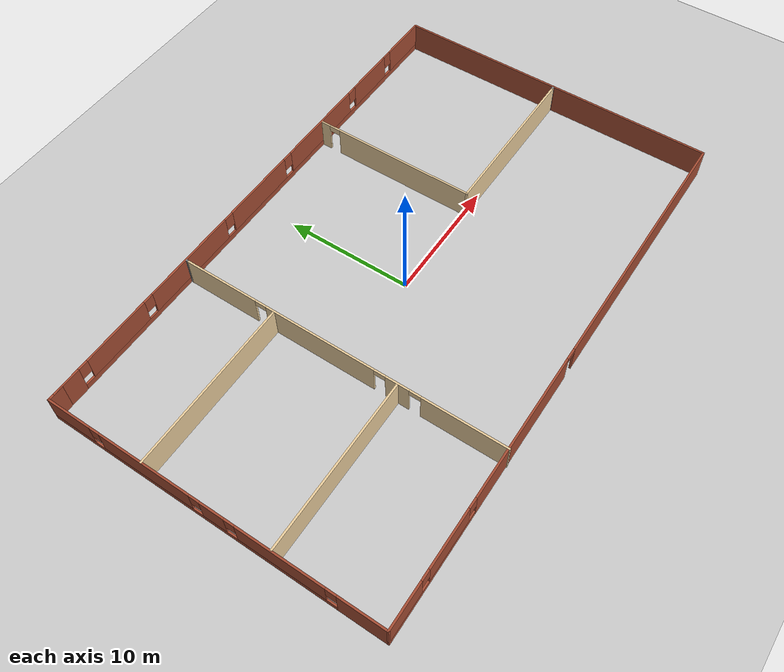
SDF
<sdf version="1.6">
 <world name="default">
  <model name="ground_plane">
   <static>1</static>
   <link name="link">
    <collision name="collision">
     <geometry><plane><normal>0 0 1</normal><size>100 100</size></plane></geometry>
     <surface><friction><ode><mu>100</mu><mu2>50</mu2></ode></friction></surface>
    </collision>
    <visual name="visual">
     <cast_shadows>0</cast_shadows>
     <geometry><plane><normal>0 0 1</normal><size>100 100</size></plane></geometry>
     <material>
      <script><uri>file://media/materials/scripts/gazebo.material</uri><name>Gazebo/Grey</name></script>
     </material>
    </visual>
   </link>
  </model>
  <model name="house">
   <pose>-0.058485 -0.008057 0 0 -0 0</pose>
   <link name="Wall_20">
    <pose>0.25 13.0749 0 0 -0 0</pose>
    <visual name="Wall_20_Visual_0">
     <pose>-20.0162 0 1.25 0 -0 0</pose>
     <geometry><box><size>2.21756 0.15 2.5</size></box></geometry>
     <material>
      <script><uri>file://media/materials/scripts/gazebo.material</uri><name>Gazebo/Bricks</name></script>
      <ambient>0.921569 0.807843 0.615686 1</ambient>
     </material>
     <meta><layer>0</layer></meta>
    </visual>
    <collision name="Wall_20_Collision_0">
     <geometry><box><size>2.21756 0.15 2.5</size></box></geometry>
     <pose>-20.0162 0 1.25 0 -0 0</pose>
    </collision>
    <visual name="Wall_20_Visual_1">
     <pose>1.10878 0 0.25 0 -0 0</pose>
     <geometry><box><size>40.0324 0.15 0.5</size></box></geometry>
     <material>
      <script><uri>file://media/materials/scripts/gazebo.material</uri><name>Gazebo/Bricks</name></script>
      <ambient>0.921569 0.807843 0.615686 1</ambient>
     </material>
     <meta><layer>0</layer></meta>
    </visual>
    <collision name="Wall_20_Collision_1">
     <geometry><box><size>40.0324 0.15 0.5</size></box></geometry>
     <pose>1.10878 0 0.25 0 -0 0</pose>
    </collision>
    <visual name="Wall_20_Visual_2">
     <pose>-15.3649 0 1.5 0 -0 0</pose>
     <geometry><box><size>5.48509 0.15 2</size></box></geometry>
     <material>
      <script><uri>file://media/materials/scripts/gazebo.material</uri><name>Gazebo/Bricks</name></script>
      <ambient>0.921569 0.807843 0.615686 1</ambient>
     </material>
     <meta><layer>0</layer></meta>
    </visual>
    <collision name="Wall_20_Collision_2">
     <geometry><box><size>5.48509 0.15 2</size></box></geometry>
     <pose>-15.3649 0 1.5 0 -0 0</pose>
    </collision>
    <visual name="Wall_20_Visual_3">
     <pose>-7.92857 0 1.5 0 -0 0</pose>
     <geometry><box><size>7.78755 0.15 2</size></box></geometry>
     <material>
      <script><uri>file://media/materials/scripts/gazebo.material</uri><name>Gazebo/Bricks</name></script>
      <ambient>0.921569 0.807843 0.615686 1</ambient>
     </material>
     <meta><layer>0</layer></meta>
    </visual>
    <collision name="Wall_20_Collision_3">
     <geometry><box><size>7.78755 0.15 2</size></box></geometry>
     <pose>-7.92857 0 1.5 0 -0 0</pose>
    </collision>
    <visual name="Wall_20_Visual_4">
     <pose>-0.149988 0 1.5 0 -0 0</pose>
     <geometry><box><size>6.16961 0.15 2</size></box></geometry>
     <material>
      <script><uri>file://media/materials/scripts/gazebo.material</uri><name>Gazebo/Bricks</name></script>
      <ambient>0.921569 0.807843 0.615686 1</ambient>
     </material>
     <meta><layer>0</layer></meta>
    </visual>
    <collision name="Wall_20_Collision_4">
     <geometry><box><size>6.16961 0.15 2</size></box></geometry>
     <pose>-0.149988 0 1.5 0 -0 0</pose>
    </collision>
    <visual name="Wall_20_Visual_5">
     <pose>7.53525 0 1.5 0 -0 0</pose>
     <geometry><box><size>7.60087 0.15 2</size></box></geometry>
     <material>
      <script><uri>file://media/materials/scripts/gazebo.material</uri><name>Gazebo/Bricks</name></script>
      <ambient>0.921569 0.807843 0.615686 1</ambient>
     </material>
     <meta><layer>0</layer></meta>
    </visual>
    <collision name="Wall_20_Collision_5">
     <geometry><box><size>7.60087 0.15 2</size></box></geometry>
     <pose>7.53525 0 1.5 0 -0 0</pose>
    </collision>
    <visual name="Wall_20_Visual_6">
     <pose>14.2248 0 1.5 0 -0 0</pose>
     <geometry><box><size>4.17829 0.15 2</size></box></geometry>
     <material>
      <script><uri>file://media/materials/scripts/gazebo.material</uri><name>Gazebo/Bricks</name></script>
      <ambient>0.921569 0.807843 0.615686 1</ambient>
     </material>
     <meta><layer>0</layer></meta>
    </visual>
    <collision name="Wall_20_Collision_6">
     <geometry><box><size>4.17829 0.15 2</size></box></geometry>
     <pose>14.2248 0 1.5 0 -0 0</pose>
    </collision>
    <visual name="Wall_20_Visual_7">
     <pose>19.1195 0 1.5 0 -0 0</pose>
     <geometry><box><size>4.01103 0.15 2</size></box></geometry>
     <material>
      <script><uri>file://media/materials/scripts/gazebo.material</uri><name>Gazebo/Bricks</name></script>
      <ambient>0.921569 0.807843 0.615686 1</ambient>
     </material>
     <meta><layer>0</layer></meta>
    </visual>
    <collision name="Wall_20_Collision_7">
     <geometry><box><size>4.01103 0.15 2</size></box></geometry>
     <pose>19.1195 0 1.5 0 -0 0</pose>
    </collision>
    <visual name="Wall_20_Visual_8">
     <pose>-18.5074 0 1.9 0 -0 0</pose>
     <geometry><box><size>0.8 0.15 1.2</size></box></geometry>
     <material>
      <script><uri>file://media/materials/scripts/gazebo.material</uri><name>Gazebo/Bricks</name></script>
      <ambient>0.921569 0.807843 0.615686 1</ambient>
     </material>
     <meta><layer>0</layer></meta>
    </visual>
    <collision name="Wall_20_Collision_8">
     <geometry><box><size>0.8 0.15 1.2</size></box></geometry>
     <pose>-18.5074 0 1.9 0 -0 0</pose>
    </collision>
    <visual name="Wall_20_Visual_9">
     <pose>-12.2223 0 1.9 0 -0 0</pose>
     <geometry><box><size>0.8 0.15 1.2</size></box></geometry>
     <material>
      <script><uri>file://media/materials/scripts/gazebo.material</uri><name>Gazebo/Bricks</name></script>
      <ambient>0.921569 0.807843 0.615686 1</ambient>
     </material>
     <meta><layer>0</layer></meta>
    </visual>
    <collision name="Wall_20_Collision_9">
     <geometry><box><size>0.8 0.15 1.2</size></box></geometry>
     <pose>-12.2223 0 1.9 0 -0 0</pose>
    </collision>
    <visual name="Wall_20_Visual_10">
     <pose>-3.63479 0 1.9 0 -0 0</pose>
     <geometry><box><size>0.8 0.15 1.2</size></box></geometry>
     <material>
      <script><uri>file://media/materials/scripts/gazebo.material</uri><name>Gazebo/Bricks</name></script>
      <ambient>0.921569 0.807843 0.615686 1</ambient>
     </material>
     <meta><layer>0</layer></meta>
    </visual>
    <collision name="Wall_20_Collision_10">
     <geometry><box><size>0.8 0.15 1.2</size></box></geometry>
     <pose>-3.63479 0 1.9 0 -0 0</pose>
    </collision>
    <visual name="Wall_20_Visual_11">
     <pose>3.33482 0 1.9 0 -0 0</pose>
     <geometry><box><size>0.8 0.15 1.2</size></box></geometry>
     <material>
      <script><uri>file://media/materials/scripts/gazebo.material</uri><name>Gazebo/Bricks</name></script>
      <ambient>0.921569 0.807843 0.615686 1</ambient>
     </material>
     <meta><layer>0</layer></meta>
    </visual>
    <collision name="Wall_20_Collision_11">
     <geometry><box><size>0.8 0.15 1.2</size></box></geometry>
     <pose>3.33482 0 1.9 0 -0 0</pose>
    </collision>
    <visual name="Wall_20_Visual_12">
     <pose>11.7357 0 1.9 0 -0 0</pose>
     <geometry><box><size>0.8 0.15 1.2</size></box></geometry>
     <material>
      <script><uri>file://media/materials/scripts/gazebo.material</uri><name>Gazebo/Bricks</name></script>
      <ambient>0.921569 0.807843 0.615686 1</ambient>
     </material>
     <meta><layer>0</layer></meta>
    </visual>
    <collision name="Wall_20_Collision_12">
     <geometry><box><size>0.8 0.15 1.2</size></box></geometry>
     <pose>11.7357 0 1.9 0 -0 0</pose>
    </collision>
    <visual name="Wall_20_Visual_13">
     <pose>16.714 0 1.9 0 -0 0</pose>
     <geometry><box><size>0.8 0.15 1.2</size></box></geometry>
     <material>
      <script><uri>file://media/materials/scripts/gazebo.material</uri><name>Gazebo/Bricks</name></script>
      <ambient>0.921569 0.807843 0.615686 1</ambient>
     </material>
     <meta><layer>0</layer></meta>
    </visual>
    <collision name="Wall_20_Collision_13">
     <geometry><box><size>0.8 0.15 1.2</size></box></geometry>
     <pose>16.714 0 1.9 0 -0 0</pose>
    </collision>
   </link>
   <link name="Wall_21">
    <collision name="Wall_21_Collision">
     <geometry><box><size>26.25 0.15 2.5</size></box></geometry>
     <pose>0 0 1.25 0 -0 0</pose>
    </collision>
    <visual name="Wall_21_Visual">
     <pose>0 0 1.25 0 -0 0</pose>
     <geometry><box><size>26.25 0.15 2.5</size></box></geometry>
     <material>
      <script><uri>file://media/materials/scripts/gazebo.material</uri><name>Gazebo/Bricks</name></script>
      <ambient>0.921569 0.807843 0.615686 1</ambient>
     </material>
     <meta><layer>0</layer></meta>
    </visual>
    <pose>21.3 0.024935 0 0 0 -1.5708</pose>
   </link>
   <link name="Wall_22">
    <pose>0 -13.0251 0 0 -0 3.14159</pose>
    <visual name="Wall_22_Visual_0">
     <pose>-10.9509 0 1.25 0 -0 0</pose>
     <geometry><box><size>20.8481 0.15 2.5</size></box></geometry>
     <material>
      <script><uri>file://media/materials/scripts/gazebo.material</uri><name>Gazebo/Bricks</name></script>
      <ambient>0.921569 0.807843 0.615686 1</ambient>
     </material>
     <meta><layer>0</layer></meta>
    </visual>
    <collision name="Wall_22_Collision_0">
     <geometry><box><size>20.8481 0.15 2.5</size></box></geometry>
     <pose>-10.9509 0 1.25 0 -0 0</pose>
    </collision>
    <visual name="Wall_22_Visual_1">
     <pose>6.13969 0 1.25 0 -0 0</pose>
     <geometry><box><size>11.5331 0.15 2.5</size></box></geometry>
     <material>
      <script><uri>file://media/materials/scripts/gazebo.material</uri><name>Gazebo/Bricks</name></script>
      <ambient>0.921569 0.807843 0.615686 1</ambient>
     </material>
     <meta><layer>0</layer></meta>
    </visual>
    <collision name="Wall_22_Collision_1">
     <geometry><box><size>11.5331 0.15 2.5</size></box></geometry>
     <pose>6.13969 0 1.25 0 -0 0</pose>
    </collision>
    <visual name="Wall_22_Visual_2">
     <pose>16.6406 0 0.25 0 -0 0</pose>
     <geometry><box><size>9.46877 0.15 0.5</size></box></geometry>
     <material>
      <script><uri>file://media/materials/scripts/gazebo.material</uri><name>Gazebo/Bricks</name></script>
      <ambient>0.921569 0.807843 0.615686 1</ambient>
     </material>
     <meta><layer>0</layer></meta>
    </visual>
    <collision name="Wall_22_Collision_2">
     <geometry><box><size>9.46877 0.15 0.5</size></box></geometry>
     <pose>16.6406 0 0.25 0 -0 0</pose>
    </collision>
    <visual name="Wall_22_Visual_3">
     <pose>14.9158 0 1.5 0 -0 0</pose>
     <geometry><box><size>4.41921 0.15 2</size></box></geometry>
     <material>
      <script><uri>file://media/materials/scripts/gazebo.material</uri><name>Gazebo/Bricks</name></script>
      <ambient>0.921569 0.807843 0.615686 1</ambient>
     </material>
     <meta><layer>0</layer></meta>
    </visual>
    <collision name="Wall_22_Collision_3">
     <geometry><box><size>4.41921 0.15 2</size></box></geometry>
     <pose>14.9158 0 1.5 0 -0 0</pose>
    </collision>
    <visual name="Wall_22_Visual_4">
     <pose>19.6502 0 1.5 0 -0 0</pose>
     <geometry><box><size>3.44955 0.15 2</size></box></geometry>
     <material>
      <script><uri>file://media/materials/scripts/gazebo.material</uri><name>Gazebo/Bricks</name></script>
      <ambient>0.921569 0.807843 0.615686 1</ambient>
     </material>
     <meta><layer>0</layer></meta>
    </visual>
    <collision name="Wall_22_Collision_4">
     <geometry><box><size>3.44955 0.15 2</size></box></geometry>
     <pose>19.6502 0 1.5 0 -0 0</pose>
    </collision>
    <visual name="Wall_22_Visual_5">
     <pose>12.3062 0 1.9 0 -0 0</pose>
     <geometry><box><size>0.8 0.15 1.2</size></box></geometry>
     <material>
      <script><uri>file://media/materials/scripts/gazebo.material</uri><name>Gazebo/Bricks</name></script>
      <ambient>0.921569 0.807843 0.615686 1</ambient>
     </material>
     <meta><layer>0</layer></meta>
    </visual>
    <collision name="Wall_22_Collision_5">
     <geometry><box><size>0.8 0.15 1.2</size></box></geometry>
     <pose>12.3062 0 1.9 0 -0 0</pose>
    </collision>
    <visual name="Wall_22_Visual_6">
     <pose>17.5254 0 1.9 0 -0 0</pose>
     <geometry><box><size>0.8 0.15 1.2</size></box></geometry>
     <material>
      <script><uri>file://media/materials/scripts/gazebo.material</uri><name>Gazebo/Bricks</name></script>
      <ambient>0.921569 0.807843 0.615686 1</ambient>
     </material>
     <meta><layer>0</layer></meta>
    </visual>
    <collision name="Wall_22_Collision_6">
     <geometry><box><size>0.8 0.15 1.2</size></box></geometry>
     <pose>17.5254 0 1.9 0 -0 0</pose>
    </collision>
    <visual name="Wall_22_Visual_7">
     <pose>-0.076852 0 2.25 0 -0 0</pose>
     <geometry><box><size>0.9 0.15 0.5</size></box></geometry>
     <material>
      <script><uri>file://media/materials/scripts/gazebo.material</uri><name>Gazebo/Bricks</name></script>
      <ambient>0.921569 0.807843 0.615686 1</ambient>
     </material>
     <meta><layer>0</layer></meta>
    </visual>
    <collision name="Wall_22_Collision_7">
     <geometry><box><size>0.9 0.15 0.5</size></box></geometry>
     <pose>-0.076852 0 2.25 0 -0 0</pose>
    </collision>
   </link>
   <link name="Wall_23">
    <pose>-21.3 0.024935 0 0 -0 1.5708</pose>
    <visual name="Wall_23_Visual_0">
     <pose>-11.3167 0 1.25 0 -0 0</pose>
     <geometry><box><size>3.61664 0.15 2.5</size></box></geometry>
     <material>
      <script><uri>file://media/materials/scripts/gazebo.material</uri><name>Gazebo/Bricks</name></script>
      <ambient>0.921569 0.807843 0.615686 1</ambient>
     </material>
     <meta><layer>0</layer></meta>
    </visual>
    <collision name="Wall_23_Collision_0">
     <geometry><box><size>3.61664 0.15 2.5</size></box></geometry>
     <pose>-11.3167 0 1.25 0 -0 0</pose>
    </collision>
    <visual name="Wall_23_Visual_1">
     <pose>1.80832 0 0.25 0 -0 0</pose>
     <geometry><box><size>22.6334 0.15 0.5</size></box></geometry>
     <material>
      <script><uri>file://media/materials/scripts/gazebo.material</uri><name>Gazebo/Bricks</name></script>
      <ambient>0.921569 0.807843 0.615686 1</ambient>
     </material>
     <meta><layer>0</layer></meta>
    </visual>
    <collision name="Wall_23_Collision_1">
     <geometry><box><size>22.6334 0.15 0.5</size></box></geometry>
     <pose>1.80832 0 0.25 0 -0 0</pose>
    </collision>
    <visual name="Wall_23_Visual_2">
     <pose>-5.39573 0 1.5 0 -0 0</pose>
     <geometry><box><size>6.62527 0.15 2</size></box></geometry>
     <material>
      <script><uri>file://media/materials/scripts/gazebo.material</uri><name>Gazebo/Bricks</name></script>
      <ambient>0.921569 0.807843 0.615686 1</ambient>
     </material>
     <meta><layer>0</layer></meta>
    </visual>
    <collision name="Wall_23_Collision_2">
     <geometry><box><size>6.62527 0.15 2</size></box></geometry>
     <pose>-5.39573 0 1.5 0 -0 0</pose>
    </collision>
    <visual name="Wall_23_Visual_3">
     <pose>-0.337935 0 1.5 0 -0 0</pose>
     <geometry><box><size>1.89032 0.15 2</size></box></geometry>
     <material>
      <script><uri>file://media/materials/scripts/gazebo.material</uri><name>Gazebo/Bricks</name></script>
      <ambient>0.921569 0.807843 0.615686 1</ambient>
     </material>
     <meta><layer>0</layer></meta>
    </visual>
    <collision name="Wall_23_Collision_3">
     <geometry><box><size>1.89032 0.15 2</size></box></geometry>
     <pose>-0.337935 0 1.5 0 -0 0</pose>
    </collision>
    <visual name="Wall_23_Visual_4">
     <pose>5.0696 0 1.5 0 -0 0</pose>
     <geometry><box><size>7.32475 0.15 2</size></box></geometry>
     <material>
      <script><uri>file://media/materials/scripts/gazebo.material</uri><name>Gazebo/Bricks</name></script>
      <ambient>0.921569 0.807843 0.615686 1</ambient>
     </material>
     <meta><layer>0</layer></meta>
    </visual>
    <collision name="Wall_23_Collision_4">
     <geometry><box><size>7.32475 0.15 2</size></box></geometry>
     <pose>5.0696 0 1.5 0 -0 0</pose>
    </collision>
    <visual name="Wall_23_Visual_5">
     <pose>11.3285 0 1.5 0 -0 0</pose>
     <geometry><box><size>3.59302 0.15 2</size></box></geometry>
     <material>
      <script><uri>file://media/materials/scripts/gazebo.material</uri><name>Gazebo/Bricks</name></script>
      <ambient>0.921569 0.807843 0.615686 1</ambient>
     </material>
     <meta><layer>0</layer></meta>
    </visual>
    <collision name="Wall_23_Collision_5">
     <geometry><box><size>3.59302 0.15 2</size></box></geometry>
     <pose>11.3285 0 1.5 0 -0 0</pose>
    </collision>
    <visual name="Wall_23_Visual_6">
     <pose>-9.10836 0 1.9 0 -0 0</pose>
     <geometry><box><size>0.8 0.15 1.2</size></box></geometry>
     <material>
      <script><uri>file://media/materials/scripts/gazebo.material</uri><name>Gazebo/Bricks</name></script>
      <ambient>0.921569 0.807843 0.615686 1</ambient>
     </material>
     <meta><layer>0</layer></meta>
    </visual>
    <collision name="Wall_23_Collision_6">
     <geometry><box><size>0.8 0.15 1.2</size></box></geometry>
     <pose>-9.10836 0 1.9 0 -0 0</pose>
    </collision>
    <visual name="Wall_23_Visual_7">
     <pose>-1.68309 0 1.9 0 -0 0</pose>
     <geometry><box><size>0.8 0.15 1.2</size></box></geometry>
     <material>
      <script><uri>file://media/materials/scripts/gazebo.material</uri><name>Gazebo/Bricks</name></script>
      <ambient>0.921569 0.807843 0.615686 1</ambient>
     </material>
     <meta><layer>0</layer></meta>
    </visual>
    <collision name="Wall_23_Collision_7">
     <geometry><box><size>0.8 0.15 1.2</size></box></geometry>
     <pose>-1.68309 0 1.9 0 -0 0</pose>
    </collision>
    <visual name="Wall_23_Visual_8">
     <pose>1.00722 0 1.9 0 -0 0</pose>
     <geometry><box><size>0.8 0.15 1.2</size></box></geometry>
     <material>
      <script><uri>file://media/materials/scripts/gazebo.material</uri><name>Gazebo/Bricks</name></script>
      <ambient>0.921569 0.807843 0.615686 1</ambient>
     </material>
     <meta><layer>0</layer></meta>
    </visual>
    <collision name="Wall_23_Collision_8">
     <geometry><box><size>0.8 0.15 1.2</size></box></geometry>
     <pose>1.00722 0 1.9 0 -0 0</pose>
    </collision>
    <visual name="Wall_23_Visual_9">
     <pose>9.13198 0 1.9 0 -0 0</pose>
     <geometry><box><size>0.8 0.15 1.2</size></box></geometry>
     <material>
      <script><uri>file://media/materials/scripts/gazebo.material</uri><name>Gazebo/Bricks</name></script>
      <ambient>0.921569 0.807843 0.615686 1</ambient>
     </material>
     <meta><layer>0</layer></meta>
    </visual>
    <collision name="Wall_23_Collision_9">
     <geometry><box><size>0.8 0.15 1.2</size></box></geometry>
     <pose>9.13198 0 1.9 0 -0 0</pose>
    </collision>
   </link>
   <link name="Wall_24">
    <collision name="Wall_24_Collision">
     <geometry><box><size>1.25 0.15 2.5</size></box></geometry>
     <pose>0 0 1.25 0 -0 0</pose>
    </collision>
    <visual name="Wall_24_Visual">
     <pose>0 0 1.25 0 -0 0</pose>
     <geometry><box><size>1.25 0.15 2.5</size></box></geometry>
     <material>
      <script><uri>file://media/materials/scripts/gazebo.material</uri><name>Gazebo/Bricks</name></script>
      <ambient>1 1 1 1</ambient>
     </material>
     <meta><layer>0</layer></meta>
    </visual>
    <pose>-20.75 13.0749 0 0 -0 0</pose>
   </link>
   <link name="Wall_26">
    <pose>-8.0479 -0.149936 0 0 -0 1.5708</pose>
    <visual name="Wall_26_Visual_0">
     <pose>-9.71207 0 1.25 0 -0 0</pose>
     <geometry><box><size>6.57585 0.15 2.5</size></box></geometry>
     <material>
      <script><uri>file://media/materials/scripts/gazebo.material</uri><name>Gazebo/Grey</name></script>
      <ambient>0.921569 0.807843 0.615686 1</ambient>
     </material>
     <meta><layer>0</layer></meta>
    </visual>
    <collision name="Wall_26_Collision_0">
     <geometry><box><size>6.57585 0.15 2.5</size></box></geometry>
     <pose>-9.71207 0 1.25 0 -0 0</pose>
    </collision>
    <visual name="Wall_26_Visual_1">
     <pose>-4.60208 0 1.25 0 -0 0</pose>
     <geometry><box><size>1.84412 0.15 2.5</size></box></geometry>
     <material>
      <script><uri>file://media/materials/scripts/gazebo.material</uri><name>Gazebo/Grey</name></script>
      <ambient>0.921569 0.807843 0.615686 1</ambient>
     </material>
     <meta><layer>0</layer></meta>
    </visual>
    <collision name="Wall_26_Collision_1">
     <geometry><box><size>1.84412 0.15 2.5</size></box></geometry>
     <pose>-4.60208 0 1.25 0 -0 0</pose>
    </collision>
    <visual name="Wall_26_Visual_2">
     <pose>1.66635 0 1.25 0 -0 0</pose>
     <geometry><box><size>8.89275 0.15 2.5</size></box></geometry>
     <material>
      <script><uri>file://media/materials/scripts/gazebo.material</uri><name>Gazebo/Grey</name></script>
      <ambient>0.921569 0.807843 0.615686 1</ambient>
     </material>
     <meta><layer>0</layer></meta>
    </visual>
    <collision name="Wall_26_Collision_2">
     <geometry><box><size>8.89275 0.15 2.5</size></box></geometry>
     <pose>1.66635 0 1.25 0 -0 0</pose>
    </collision>
    <visual name="Wall_26_Visual_3">
     <pose>10.0064 0 1.25 0 -0 0</pose>
     <geometry><box><size>5.98727 0.15 2.5</size></box></geometry>
     <material>
      <script><uri>file://media/materials/scripts/gazebo.material</uri><name>Gazebo/Grey</name></script>
      <ambient>0.921569 0.807843 0.615686 1</ambient>
     </material>
     <meta><layer>0</layer></meta>
    </visual>
    <collision name="Wall_26_Collision_3">
     <geometry><box><size>5.98727 0.15 2.5</size></box></geometry>
     <pose>10.0064 0 1.25 0 -0 0</pose>
    </collision>
    <visual name="Wall_26_Visual_4">
     <pose>-5.97415 0 2.25 0 -0 0</pose>
     <geometry><box><size>0.9 0.15 0.5</size></box></geometry>
     <material>
      <script><uri>file://media/materials/scripts/gazebo.material</uri><name>Gazebo/Grey</name></script>
      <ambient>0.921569 0.807843 0.615686 1</ambient>
     </material>
     <meta><layer>0</layer></meta>
    </visual>
    <collision name="Wall_26_Collision_4">
     <geometry><box><size>0.9 0.15 0.5</size></box></geometry>
     <pose>-5.97415 0 2.25 0 -0 0</pose>
    </collision>
    <visual name="Wall_26_Visual_5">
     <pose>-3.23002 0 2.25 0 -0 0</pose>
     <geometry><box><size>0.9 0.15 0.5</size></box></geometry>
     <material>
      <script><uri>file://media/materials/scripts/gazebo.material</uri><name>Gazebo/Grey</name></script>
      <ambient>0.921569 0.807843 0.615686 1</ambient>
     </material>
     <meta><layer>0</layer></meta>
    </visual>
    <collision name="Wall_26_Collision_5">
     <geometry><box><size>0.9 0.15 0.5</size></box></geometry>
     <pose>-3.23002 0 2.25 0 -0 0</pose>
    </collision>
    <visual name="Wall_26_Visual_6">
     <pose>6.56273 0 2.25 0 -0 0</pose>
     <geometry><box><size>0.9 0.15 0.5</size></box></geometry>
     <material>
      <script><uri>file://media/materials/scripts/gazebo.material</uri><name>Gazebo/Grey</name></script>
      <ambient>0.921569 0.807843 0.615686 1</ambient>
     </material>
     <meta><layer>0</layer></meta>
    </visual>
    <collision name="Wall_26_Collision_6">
     <geometry><box><size>0.9 0.15 0.5</size></box></geometry>
     <pose>6.56273 0 2.25 0 -0 0</pose>
    </collision>
   </link>
   <link name="Wall_27">
    <collision name="Wall_27_Collision">
     <geometry><box><size>0.25 0.15 2.5</size></box></geometry>
     <pose>0 0 1.25 0 -0 0</pose>
    </collision>
    <visual name="Wall_27_Visual">
     <pose>0 0 1.25 0 -0 0</pose>
     <geometry><box><size>0.25 0.15 2.5</size></box></geometry>
     <material>
      <script><uri>file://media/materials/scripts/gazebo.material</uri><name>Gazebo/Grey</name></script>
      <ambient>1 1 1 1</ambient>
     </material>
     <meta><layer>0</layer></meta>
    </visual>
    <pose>-8.0479 12.8251 0 0 -0 1.5708</pose>
   </link>
   <link name="Wall_28">
    <collision name="Wall_28_Collision">
     <geometry><box><size>0.25 0.15 2.5</size></box></geometry>
     <pose>0 0 1.25 0 -0 0</pose>
    </collision>
    <visual name="Wall_28_Visual">
     <pose>0 0 1.25 0 -0 0</pose>
     <geometry><box><size>0.25 0.15 2.5</size></box></geometry>
     <material>
      <script><uri>file://media/materials/scripts/gazebo.material</uri><name>Gazebo/Grey</name></script>
      <ambient>1 1 1 1</ambient>
     </material>
     <meta><layer>0</layer></meta>
    </visual>
    <pose>-8.0479 12.9251 0 0 -0 1.5708</pose>
   </link>
   <link name="Wall_32">
    <collision name="Wall_32_Collision">
     <geometry><box><size>13.25 0.15 2.5</size></box></geometry>
     <pose>0 0 1.25 0 -0 0</pose>
    </collision>
    <visual name="Wall_32_Visual">
     <pose>0 0 1.25 0 -0 0</pose>
     <geometry><box><size>13.25 0.15 2.5</size></box></geometry>
     <material>
      <script><uri>file://media/materials/scripts/gazebo.material</uri><name>Gazebo/Grey</name></script>
      <ambient>0.921569 0.807843 0.615686 1</ambient>
     </material>
     <meta><layer>0</layer></meta>
    </visual>
    <pose>-14.7499 5.25715 0 0 -0 0</pose>
   </link>
   <link name="Wall_34">
    <collision name="Wall_34_Collision">
     <geometry><box><size>13.25 0.15 2.5</size></box></geometry>
     <pose>0 0 1.25 0 -0 0</pose>
    </collision>
    <visual name="Wall_34_Visual">
     <pose>0 0 1.25 0 -0 0</pose>
     <geometry><box><size>13.25 0.15 2.5</size></box></geometry>
     <material>
      <script><uri>file://media/materials/scripts/gazebo.material</uri><name>Gazebo/Grey</name></script>
      <ambient>0.921569 0.807843 0.615686 1</ambient>
     </material>
     <meta><layer>0</layer></meta>
    </visual>
    <pose>-14.6759 -4.78992 0 0 -0 0</pose>
   </link>
   <link name="Wall_36">
    <collision name="Wall_36_Collision">
     <geometry><box><size>13.25 0.15 2.5</size></box></geometry>
     <pose>0 0 1.25 0 -0 0</pose>
    </collision>
    <visual name="Wall_36_Visual">
     <pose>0 0 1.25 0 -0 0</pose>
     <geometry><box><size>13.25 0.15 2.5</size></box></geometry>
     <material>
      <script><uri>file://media/materials/scripts/gazebo.material</uri><name>Gazebo/Grey</name></script>
      <ambient>0.921569 0.807843 0.615686 1</ambient>
     </material>
     <meta><layer>0</layer></meta>
    </visual>
    <pose>14.5287 -0.15158 0 0 -0 0</pose>
   </link>
   <link name="Wall_37">
    <collision name="Wall_37_Collision">
     <geometry><box><size>0.25 0.15 2.5</size></box></geometry>
     <pose>0 0 1.25 0 -0 0</pose>
    </collision>
    <visual name="Wall_37_Visual">
     <pose>0 0 1.25 0 -0 0</pose>
     <geometry><box><size>0.25 0.15 2.5</size></box></geometry>
     <material>
      <script><uri>file://media/materials/scripts/gazebo.material</uri><name>Gazebo/Grey</name></script>
      <ambient>1 1 1 1</ambient>
     </material>
     <meta><layer>0</layer></meta>
    </visual>
    <pose>21.1287 -0.15158 0 0 -0 0</pose>
   </link>
   <link name="Wall_39">
    <pose>7.97875 6.39842 0 0 -0 1.5708</pose>
    <visual name="Wall_39_Visual_0">
     <pose>-0.85401 0 1.25 0 -0 0</pose>
     <geometry><box><size>11.542 0.15 2.5</size></box></geometry>
     <material>
      <script><uri>file://media/materials/scripts/gazebo.material</uri><name>Gazebo/Grey</name></script>
      <ambient>0.921569 0.807843 0.615686 1</ambient>
     </material>
     <meta><layer>0</layer></meta>
    </visual>
    <collision name="Wall_39_Collision_0">
     <geometry><box><size>11.542 0.15 2.5</size></box></geometry>
     <pose>-0.85401 0 1.25 0 -0 0</pose>
    </collision>
    <visual name="Wall_39_Visual_1">
     <pose>6.22099 0 1.25 0 -0 0</pose>
     <geometry><box><size>0.80802 0.15 2.5</size></box></geometry>
     <material>
      <script><uri>file://media/materials/scripts/gazebo.material</uri><name>Gazebo/Grey</name></script>
      <ambient>0.921569 0.807843 0.615686 1</ambient>
     </material>
     <meta><layer>0</layer></meta>
    </visual>
    <collision name="Wall_39_Collision_1">
     <geometry><box><size>0.80802 0.15 2.5</size></box></geometry>
     <pose>6.22099 0 1.25 0 -0 0</pose>
    </collision>
    <visual name="Wall_39_Visual_2">
     <pose>5.36698 0 2.25 0 -0 0</pose>
     <geometry><box><size>0.9 0.15 0.5</size></box></geometry>
     <material>
      <script><uri>file://media/materials/scripts/gazebo.material</uri><name>Gazebo/Grey</name></script>
      <ambient>0.921569 0.807843 0.615686 1</ambient>
     </material>
     <meta><layer>0</layer></meta>
    </visual>
    <collision name="Wall_39_Collision_2">
     <geometry><box><size>0.9 0.15 0.5</size></box></geometry>
     <pose>5.36698 0 2.25 0 -0 0</pose>
    </collision>
   </link>
   <static>1</static>
  </model>
 </world>
</sdf>
